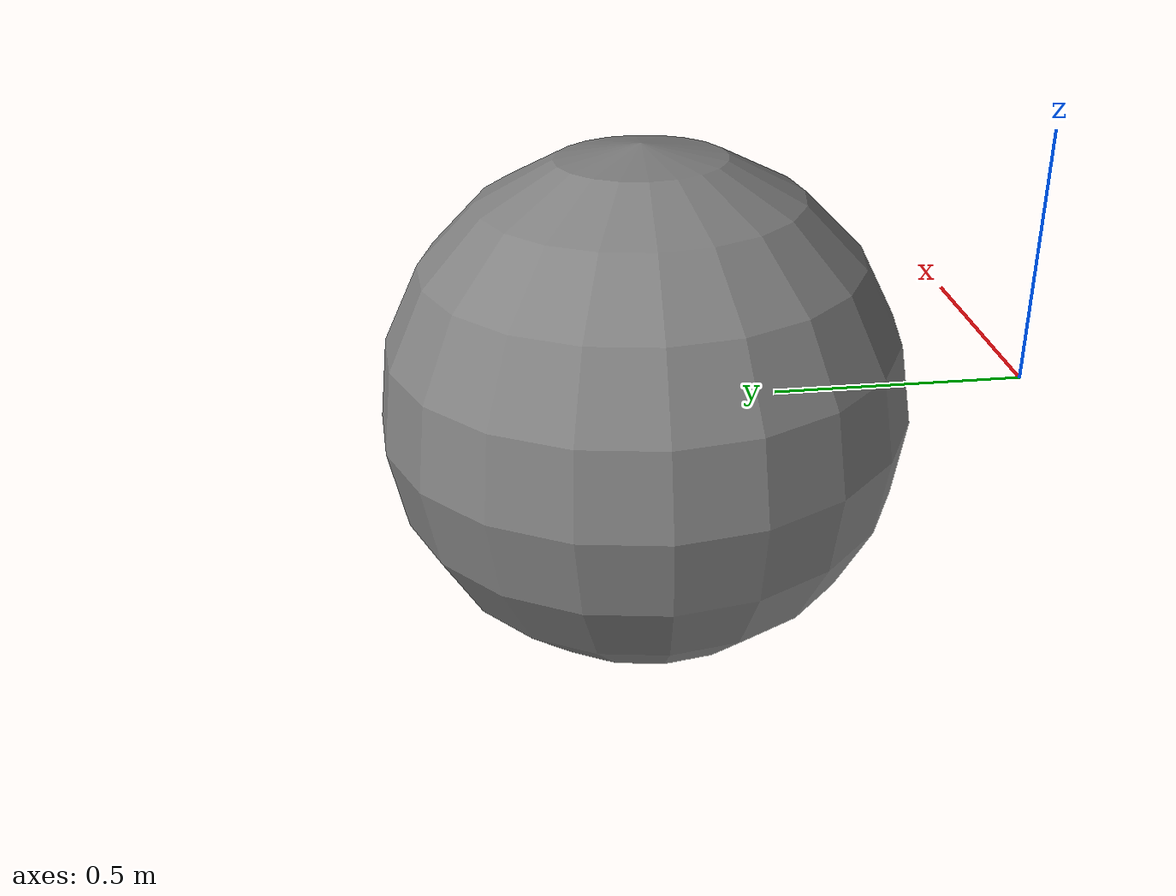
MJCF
<mujoco model="ideal_pendulum">
  <option gravity="0 -9.81 0" />

  <worldbody>
    <light diffuse=".5 .5 .5" pos="0 0 -3" dir="0 0 1"/>
    <body name="pendulum_base" pos="0 1 0">
      <joint name="hinge" type="hinge" axis="0 0 1" damping="0" friction="0"/>
      <body name="rod" pos="0 -0.2485 0">
        <geom type="cylinder" size="0.001 0.12425" mass="0" contype="0" conaffinity="0"/>
        <body name="bob" pos="0 0 0">
          <geom type="sphere" size="0.5" mass="1.0" contype="1" conaffinity="1"/>
        </body>
      </body>
    </body>
  </worldbody>
</mujoco>
